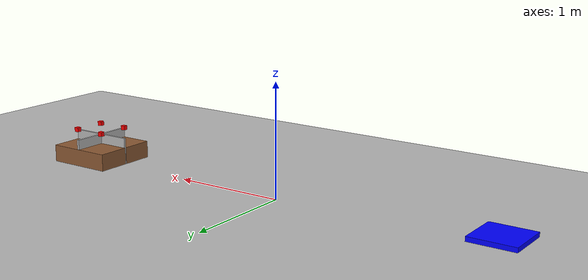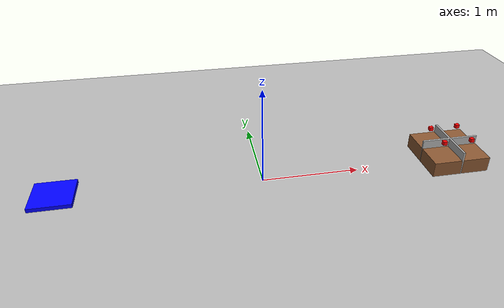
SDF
<?xml version="1.0" ?>
<sdf version="1.6">
  <world name="warehouse_world">

    <!-- Ground and light -->
    <include>
      <uri>model://ground_plane</uri>
    </include>
    <include>
      <uri>model://sun</uri>
    </include>

    <!-- ================= FLOOR ================= -->
    <model name="floor">
      <static>true</static>
      <link name="floor_link">
        <collision name="floor_col">
          <geometry>
            <box><size>20 20 0.05</size></box>
          </geometry>
        </collision>
        <visual name="floor_vis">
          <geometry>
            <box><size>20 20 0.05</size></box>
          </geometry>
        </visual>
      </link>
    </model>

    <!-- ================= PALLET BASE ================= -->
    <model name="pallet_base">
      <static>true</static>
      <pose>2 0 0.04 0 0 0</pose>
      <link name="pallet_link">
        <collision name="pallet_col">
          <geometry>
            <box><size>0.6 0.6 0.28</size></box>
          </geometry>
        </collision>
        <visual name="pallet_vis">
          <geometry>
            <box><size>0.6 0.6 0.28</size></box>
          </geometry>
          <material>
            <ambient>0.55 0.35 0.2 1</ambient>
          </material>
        </visual>
      </link>
    </model>

    <!-- ================= PALLET PARTITIONS (2x2) ================= -->

    <!-- Vertical partition -->
    <model name="pallet_divider_x">
      <static>true</static>
      <pose>2 0 0.10 0 0 0</pose>
      <link name="link">
        <collision name="col">
          <geometry>
            <box><size>0.02 0.6 0.34</size></box>
          </geometry>
        </collision>
        <visual name="vis">
          <geometry>
            <box><size>0.02 0.6 0.34</size></box>
          </geometry>
        </visual>
      </link>
    </model>

    <!-- Horizontal partition -->
    <model name="pallet_divider_y">
      <static>true</static>
      <pose>2 0 0.10 0 0 1.57</pose>
      <link name="link">
        <collision name="col">
          <geometry>
            <box><size>0.02 0.6 0.34</size></box>
          </geometry>
        </collision>
        <visual name="vis">
          <geometry>
            <box><size>0.02 0.6 0.34</size></box>
          </geometry>
        </visual>
      </link>
    </model>

    <!-- ================= PICK OBJECTS (CENTERED) ================= -->

    <!-- Top-left -->
    <model name="pick_1">
      <pose>1.85 0.15 0.32 0 0 0</pose>
      <link name="link">
        <collision name="col">
          <geometry><box><size>0.04 0.04 0.04</size></box></geometry>
        </collision>
        <visual name="vis">
          <geometry><box><size>0.04 0.04 0.04</size></box></geometry>
          <material><ambient>1 0 0 1</ambient></material>
        </visual>
      </link>
    </model>

    <!-- Top-right -->
    <model name="pick_2">
      <pose>2.15 0.15 0.32 0 0 0</pose>
      <link name="link">
        <collision name="col">
          <geometry><box><size>0.04 0.04 0.04</size></box></geometry>
        </collision>
        <visual name="vis">
          <geometry><box><size>0.04 0.04 0.04</size></box></geometry>
          <material><ambient>1 0 0 1</ambient></material>
        </visual>
      </link>
    </model>

    <!-- Bottom-left -->
    <model name="pick_3">
      <pose>1.85 -0.15 0.32 0 0 0</pose>
      <link name="link">
        <collision name="col">
          <geometry><box><size>0.04 0.04 0.04</size></box></geometry>
        </collision>
        <visual name="vis">
          <geometry><box><size>0.04 0.04 0.04</size></box></geometry>
          <material><ambient>1 0 0 1</ambient></material>
        </visual>
      </link>
    </model>

    <!-- Bottom-right -->
    <model name="pick_4">
      <pose>2.15 -0.15 0.32 0 0 0</pose>
      <link name="link">
        <collision name="col">
          <geometry><box><size>0.04 0.04 0.04</size></box></geometry>
        </collision>
        <visual name="vis">
          <geometry><box><size>0.04 0.04 0.04</size></box></geometry>
          <material><ambient>1 0 0 1</ambient></material>
        </visual>
      </link>
    </model>

    <!-- ================= HOLLOW DROP BOX ================= -->
    <model name="drop_box">
      <static>true</static>
      <pose>-2 0 0.10 0 0 0</pose>
      <link name="drop_link">

        <!-- Bottom -->
        <collision name="bottom_col">
          <geometry><box><size>0.4 0.4 0.04</size></box></geometry>
        </collision>
        <visual name="bottom_vis">
          <geometry><box><size>0.4 0.4 0.04</size></box></geometry>
          <material><ambient>0 0 1 1</ambient></material>
        </visual>

        <!-- Walls -->
        <collision name="wall1_col">
          <pose>0 0.18 0.12 0 0 0</pose>
          <geometry><box><size>0.4 0.04 0.22</size></box></geometry>
        </collision>
        <collision name="wall2_col">
          <pose>0 -0.18 0.12 0 0 0</pose>
          <geometry><box><size>0.4 0.04 0.22</size></box></geometry>
        </collision>
        <collision name="wall3_col">
          <pose>0.18 0 0.12 0 0 1.57</pose>
          <geometry><box><size>0.4 0.04 0.22</size></box></geometry>
        </collision>
        <collision name="wall4_col">
          <pose>-0.18 0 0.12 0 0 1.57</pose>
          <geometry><box><size>0.4 0.04 0.22</size></box></geometry>
        </collision>

      </link>
    </model>

  </world>
</sdf>
